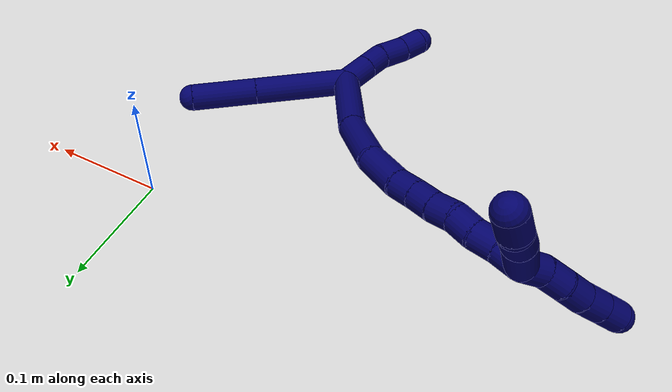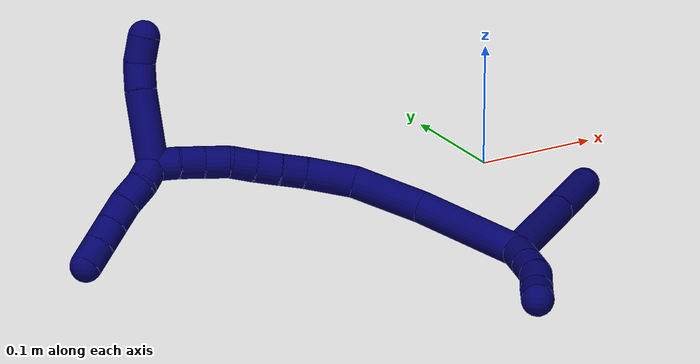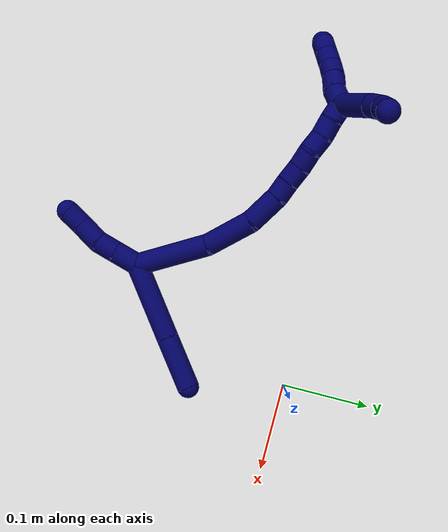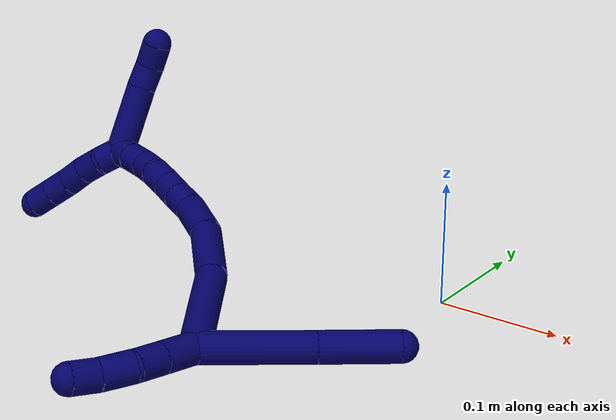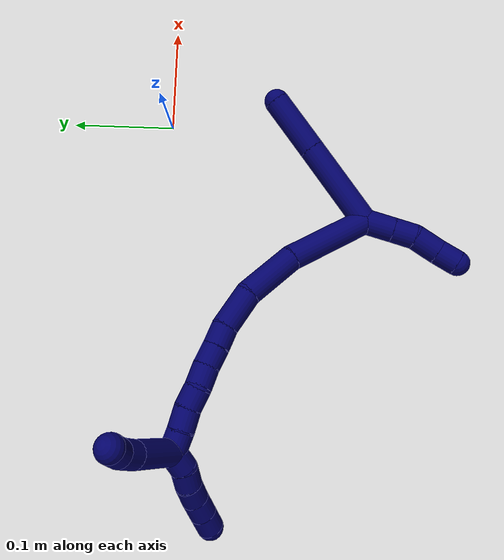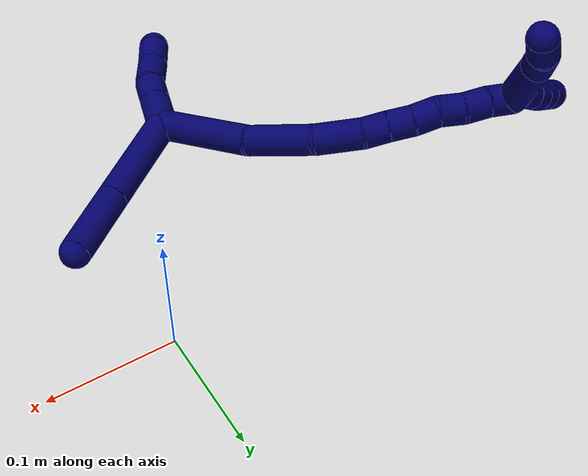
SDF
<sdf version="1.7">
 <world name="default">
  <model name="7">
   <static>0</static>
   <link name="7">
    <collision name="collision-cylinder-e_1_2_8">
     <pose>-0.015465 -0.036073 -0.021206 2.10224 -0.354008 -0.606037</pose>
     <geometry><cylinder><radius>0.0125</radius><length>0.089221</length></cylinder></geometry>
     <surface>
      <friction><ode><mu>1.16</mu><mu2>1.16</mu2><slip1>0</slip1><slip2>0</slip2></ode></friction>
      <contact><ode><kp>1e+06</kp><kd>1</kd><max_vel>0</max_vel><min_depth>0.001</min_depth></ode></contact>
     </surface>
    </collision>
    <visual name="visual-cylinder-e_1_2_8">
     <pose>-0.015465 -0.036073 -0.021206 2.10224 -0.354008 -0.606037</pose>
     <geometry><cylinder><radius>0.0125</radius><length>0.089221</length></cylinder></geometry>
     <material><ambient>0.003922 0 0.403922 1</ambient></material>
    </visual>
    <collision name="collision-cylinder-e_2_8_6">
     <pose>-0.041548 -0.096603 -0.056992 2.1084 -0.356963 -0.615009</pose>
     <geometry><cylinder><radius>0.0125</radius><length>0.060779</length></cylinder></geometry>
     <surface>
      <friction><ode><mu>1.16</mu><mu2>1.16</mu2><slip1>0</slip1><slip2>0</slip2></ode></friction>
      <contact><ode><kp>1e+06</kp><kd>1</kd><max_vel>0</max_vel><min_depth>0.001</min_depth></ode></contact>
     </surface>
    </collision>
    <visual name="visual-cylinder-e_2_8_6">
     <pose>-0.041548 -0.096603 -0.056992 2.1084 -0.356963 -0.615009</pose>
     <geometry><cylinder><radius>0.0125</radius><length>0.060779</length></cylinder></geometry>
     <material><ambient>0.003922 0 0.403922 1</ambient></material>
    </visual>
    <collision name="collision-cylinder-e_1_2_9">
     <pose>0.011909 0.005566 0.006137 -0.736589 0.962958 -0.397927</pose>
     <geometry><cylinder><radius>0.0125</radius><length>0.029015</length></cylinder></geometry>
     <surface>
      <friction><ode><mu>1.16</mu><mu2>1.16</mu2><slip1>0</slip1><slip2>0</slip2></ode></friction>
      <contact><ode><kp>1e+06</kp><kd>1</kd><max_vel>0</max_vel><min_depth>0.001</min_depth></ode></contact>
     </surface>
    </collision>
    <visual name="visual-cylinder-e_1_2_9">
     <pose>0.011909 0.005566 0.006137 -0.736589 0.962958 -0.397927</pose>
     <geometry><cylinder><radius>0.0125</radius><length>0.029015</length></cylinder></geometry>
     <material><ambient>0.003922 0 0.403922 1</ambient></material>
    </visual>
    <collision name="collision-cylinder-e_2_9_10">
     <pose>0.032967 0.015487 0.016978 -0.747013 0.959655 -0.402368</pose>
     <geometry><cylinder><radius>0.0125</radius><length>0.022343</length></cylinder></geometry>
     <surface>
      <friction><ode><mu>1.16</mu><mu2>1.16</mu2><slip1>0</slip1><slip2>0</slip2></ode></friction>
      <contact><ode><kp>1e+06</kp><kd>1</kd><max_vel>0</max_vel><min_depth>0.001</min_depth></ode></contact>
     </surface>
    </collision>
    <visual name="visual-cylinder-e_2_9_10">
     <pose>0.032967 0.015487 0.016978 -0.747013 0.959655 -0.402368</pose>
     <geometry><cylinder><radius>0.0125</radius><length>0.022343</length></cylinder></geometry>
     <material><ambient>0.003922 0 0.403922 1</ambient></material>
    </visual>
    <collision name="collision-cylinder-e_3_10_11">
     <pose>0.05051 0.027338 0.028817 -0.809983 0.681439 -0.301672</pose>
     <geometry><cylinder><radius>0.0125</radius><length>0.026651</length></cylinder></geometry>
     <surface>
      <friction><ode><mu>1.16</mu><mu2>1.16</mu2><slip1>0</slip1><slip2>0</slip2></ode></friction>
      <contact><ode><kp>1e+06</kp><kd>1</kd><max_vel>0</max_vel><min_depth>0.001</min_depth></ode></contact>
     </surface>
    </collision>
    <visual name="visual-cylinder-e_3_10_11">
     <pose>0.05051 0.027338 0.028817 -0.809983 0.681439 -0.301672</pose>
     <geometry><cylinder><radius>0.0125</radius><length>0.026651</length></cylinder></geometry>
     <material><ambient>0.003922 0 0.403922 1</ambient></material>
    </visual>
    <collision name="collision-cylinder-e_4_11_5">
     <pose>0.066426 0.041377 0.040591 -0.954249 0.753359 -0.403425</pose>
     <geometry><cylinder><radius>0.0125</radius><length>0.021991</length></cylinder></geometry>
     <surface>
      <friction><ode><mu>1.16</mu><mu2>1.16</mu2><slip1>0</slip1><slip2>0</slip2></ode></friction>
      <contact><ode><kp>1e+06</kp><kd>1</kd><max_vel>0</max_vel><min_depth>0.001</min_depth></ode></contact>
     </surface>
    </collision>
    <visual name="visual-cylinder-e_4_11_5">
     <pose>0.066426 0.041377 0.040591 -0.954249 0.753359 -0.403425</pose>
     <geometry><cylinder><radius>0.0125</radius><length>0.021991</length></cylinder></geometry>
     <material><ambient>0.003922 0 0.403922 1</ambient></material>
    </visual>
    <collision name="collision-cylinder-e_1_2_12">
     <pose>-0.035679 0.017955 -0.015268 -2.27547 -0.987019 1.72162</pose>
     <geometry><cylinder><radius>0.0125</radius><length>0.085522</length></cylinder></geometry>
     <surface>
      <friction><ode><mu>1.16</mu><mu2>1.16</mu2><slip1>0</slip1><slip2>0</slip2></ode></friction>
      <contact><ode><kp>1e+06</kp><kd>1</kd><max_vel>0</max_vel><min_depth>0.001</min_depth></ode></contact>
     </surface>
    </collision>
    <visual name="visual-cylinder-e_1_2_12">
     <pose>-0.035679 0.017955 -0.015268 -2.27547 -0.987019 1.72162</pose>
     <geometry><cylinder><radius>0.0125</radius><length>0.085522</length></cylinder></geometry>
     <material><ambient>0.003922 0 0.403922 1</ambient></material>
    </visual>
    <collision name="collision-cylinder-e_2_12_13">
     <pose>-0.092081 0.052818 -0.038561 -2.01399 -0.836254 1.22516</pose>
     <geometry><cylinder><radius>0.0125</radius><length>0.055845</length></cylinder></geometry>
     <surface>
      <friction><ode><mu>1.16</mu><mu2>1.16</mu2><slip1>0</slip1><slip2>0</slip2></ode></friction>
      <contact><ode><kp>1e+06</kp><kd>1</kd><max_vel>0</max_vel><min_depth>0.001</min_depth></ode></contact>
     </surface>
    </collision>
    <visual name="visual-cylinder-e_2_12_13">
     <pose>-0.092081 0.052818 -0.038561 -2.01399 -0.836254 1.22516</pose>
     <geometry><cylinder><radius>0.0125</radius><length>0.055845</length></cylinder></geometry>
     <material><ambient>0.003922 0 0.403922 1</ambient></material>
    </visual>
    <collision name="collision-cylinder-e_3_13_14">
     <pose>-0.125142 0.084389 -0.048331 -1.68918 -0.696002 0.775575</pose>
     <geometry><cylinder><radius>0.0125</radius><length>0.038488</length></cylinder></geometry>
     <surface>
      <friction><ode><mu>1.16</mu><mu2>1.16</mu2><slip1>0</slip1><slip2>0</slip2></ode></friction>
      <contact><ode><kp>1e+06</kp><kd>1</kd><max_vel>0</max_vel><min_depth>0.001</min_depth></ode></contact>
     </surface>
    </collision>
    <visual name="visual-cylinder-e_3_13_14">
     <pose>-0.125142 0.084389 -0.048331 -1.68918 -0.696002 0.775575</pose>
     <geometry><cylinder><radius>0.0125</radius><length>0.038488</length></cylinder></geometry>
     <material><ambient>0.003922 0 0.403922 1</ambient></material>
    </visual>
    <collision name="collision-cylinder-e_4_14_15">
     <pose>-0.142517 0.107743 -0.05018 -1.58288 -0.525332 0.531423</pose>
     <geometry><cylinder><radius>0.0125</radius><length>0.020087</length></cylinder></geometry>
     <surface>
      <friction><ode><mu>1.16</mu><mu2>1.16</mu2><slip1>0</slip1><slip2>0</slip2></ode></friction>
      <contact><ode><kp>1e+06</kp><kd>1</kd><max_vel>0</max_vel><min_depth>0.001</min_depth></ode></contact>
     </surface>
    </collision>
    <visual name="visual-cylinder-e_4_14_15">
     <pose>-0.142517 0.107743 -0.05018 -1.58288 -0.525332 0.531423</pose>
     <geometry><cylinder><radius>0.0125</radius><length>0.020087</length></cylinder></geometry>
     <material><ambient>0.003922 0 0.403922 1</ambient></material>
    </visual>
    <collision name="collision-cylinder-e_5_15_16">
     <pose>-0.153016 0.124829 -0.050559 -1.60335 -0.576459 0.594448</pose>
     <geometry><cylinder><radius>0.0125</radius><length>0.020042</length></cylinder></geometry>
     <surface>
      <friction><ode><mu>1.16</mu><mu2>1.16</mu2><slip1>0</slip1><slip2>0</slip2></ode></friction>
      <contact><ode><kp>1e+06</kp><kd>1</kd><max_vel>0</max_vel><min_depth>0.001</min_depth></ode></contact>
     </surface>
    </collision>
    <visual name="visual-cylinder-e_5_15_16">
     <pose>-0.153016 0.124829 -0.050559 -1.60335 -0.576459 0.594448</pose>
     <geometry><cylinder><radius>0.0125</radius><length>0.020042</length></cylinder></geometry>
     <material><ambient>0.003922 0 0.403922 1</ambient></material>
    </visual>
    <collision name="collision-cylinder-e_6_16_17">
     <pose>-0.162811 0.142227 -0.051286 -1.62118 -0.44813 0.470474</pose>
     <geometry><cylinder><radius>0.0125</radius><length>0.020001</length></cylinder></geometry>
     <surface>
      <friction><ode><mu>1.16</mu><mu2>1.16</mu2><slip1>0</slip1><slip2>0</slip2></ode></friction>
      <contact><ode><kp>1e+06</kp><kd>1</kd><max_vel>0</max_vel><min_depth>0.001</min_depth></ode></contact>
     </surface>
    </collision>
    <visual name="visual-cylinder-e_6_16_17">
     <pose>-0.162811 0.142227 -0.051286 -1.62118 -0.44813 0.470474</pose>
     <geometry><cylinder><radius>0.0125</radius><length>0.020001</length></cylinder></geometry>
     <material><ambient>0.003922 0 0.403922 1</ambient></material>
    </visual>
    <collision name="collision-cylinder-e_7_17_18">
     <pose>-0.17323 0.159088 -0.050623 -1.42959 -0.654005 0.572573</pose>
     <geometry><cylinder><radius>0.0125</radius><length>0.020005</length></cylinder></geometry>
     <surface>
      <friction><ode><mu>1.16</mu><mu2>1.16</mu2><slip1>0</slip1><slip2>0</slip2></ode></friction>
      <contact><ode><kp>1e+06</kp><kd>1</kd><max_vel>0</max_vel><min_depth>0.001</min_depth></ode></contact>
     </surface>
    </collision>
    <visual name="visual-cylinder-e_7_17_18">
     <pose>-0.17323 0.159088 -0.050623 -1.42959 -0.654005 0.572573</pose>
     <geometry><cylinder><radius>0.0125</radius><length>0.020005</length></cylinder></geometry>
     <material><ambient>0.003922 0 0.403922 1</ambient></material>
    </visual>
    <collision name="collision-cylinder-e_8_18_19">
     <pose>-0.183841 0.175761 -0.048127 -1.41563 -0.469592 0.40382</pose>
     <geometry><cylinder><radius>0.0125</radius><length>0.020006</length></cylinder></geometry>
     <surface>
      <friction><ode><mu>1.16</mu><mu2>1.16</mu2><slip1>0</slip1><slip2>0</slip2></ode></friction>
      <contact><ode><kp>1e+06</kp><kd>1</kd><max_vel>0</max_vel><min_depth>0.001</min_depth></ode></contact>
     </surface>
    </collision>
    <visual name="visual-cylinder-e_8_18_19">
     <pose>-0.183841 0.175761 -0.048127 -1.41563 -0.469592 0.40382</pose>
     <geometry><cylinder><radius>0.0125</radius><length>0.020006</length></cylinder></geometry>
     <material><ambient>0.003922 0 0.403922 1</ambient></material>
    </visual>
    <collision name="collision-cylinder-e_9_19_1">
     <pose>-0.193837 0.192728 -0.044843 -1.34128 -0.578553 0.463717</pose>
     <geometry><cylinder><radius>0.0125</radius><length>0.020003</length></cylinder></geometry>
     <surface>
      <friction><ode><mu>1.16</mu><mu2>1.16</mu2><slip1>0</slip1><slip2>0</slip2></ode></friction>
      <contact><ode><kp>1e+06</kp><kd>1</kd><max_vel>0</max_vel><min_depth>0.001</min_depth></ode></contact>
     </surface>
    </collision>
    <visual name="visual-cylinder-e_9_19_1">
     <pose>-0.193837 0.192728 -0.044843 -1.34128 -0.578553 0.463717</pose>
     <geometry><cylinder><radius>0.0125</radius><length>0.020003</length></cylinder></geometry>
     <material><ambient>0.003922 0 0.403922 1</ambient></material>
    </visual>
    <collision name="collision-cylinder-e_1_1_20">
     <pose>-0.202569 0.207459 -0.071026 -2.91158 -0.112648 0.908173</pose>
     <geometry><cylinder><radius>0.0125</radius><length>0.058062</length></cylinder></geometry>
     <surface>
      <friction><ode><mu>1.16</mu><mu2>1.16</mu2><slip1>0</slip1><slip2>0</slip2></ode></friction>
      <contact><ode><kp>1e+06</kp><kd>1</kd><max_vel>0</max_vel><min_depth>0.001</min_depth></ode></contact>
     </surface>
    </collision>
    <visual name="visual-cylinder-e_1_1_20">
     <pose>-0.202569 0.207459 -0.071026 -2.91158 -0.112648 0.908173</pose>
     <geometry><cylinder><radius>0.0125</radius><length>0.058062</length></cylinder></geometry>
     <material><ambient>0.003922 0 0.403922 1</ambient></material>
    </visual>
    <collision name="collision-cylinder-e_2_20_21">
     <pose>-0.206449 0.215493 -0.109366 -3.00047 -0.059402 0.795856</pose>
     <geometry><cylinder><radius>0.0125</radius><length>0.020748</length></cylinder></geometry>
     <surface>
      <friction><ode><mu>1.16</mu><mu2>1.16</mu2><slip1>0</slip1><slip2>0</slip2></ode></friction>
      <contact><ode><kp>1e+06</kp><kd>1</kd><max_vel>0</max_vel><min_depth>0.001</min_depth></ode></contact>
     </surface>
    </collision>
    <visual name="visual-cylinder-e_2_20_21">
     <pose>-0.206449 0.215493 -0.109366 -3.00047 -0.059402 0.795856</pose>
     <geometry><cylinder><radius>0.0125</radius><length>0.020748</length></cylinder></geometry>
     <material><ambient>0.003922 0 0.403922 1</ambient></material>
    </visual>
    <collision name="collision-cylinder-e_3_21_4">
     <pose>-0.20464 0.217811 -0.129896 -3.05794 0.2309 -2.44888</pose>
     <geometry><cylinder><radius>0.0125</radius><length>0.02119</length></cylinder></geometry>
     <surface>
      <friction><ode><mu>1.16</mu><mu2>1.16</mu2><slip1>0</slip1><slip2>0</slip2></ode></friction>
      <contact><ode><kp>1e+06</kp><kd>1</kd><max_vel>0</max_vel><min_depth>0.001</min_depth></ode></contact>
     </surface>
    </collision>
    <visual name="visual-cylinder-e_3_21_4">
     <pose>-0.20464 0.217811 -0.129896 -3.05794 0.2309 -2.44888</pose>
     <geometry><cylinder><radius>0.0125</radius><length>0.02119</length></cylinder></geometry>
     <material><ambient>0.003922 0 0.403922 1</ambient></material>
    </visual>
    <collision name="collision-cylinder-e_1_1_22">
     <pose>-0.198154 0.20641 -0.034684 -0.590065 0.115412 -0.035109</pose>
     <geometry><cylinder><radius>0.0125</radius><length>0.02</length></cylinder></geometry>
     <surface>
      <friction><ode><mu>1.16</mu><mu2>1.16</mu2><slip1>0</slip1><slip2>0</slip2></ode></friction>
      <contact><ode><kp>1e+06</kp><kd>1</kd><max_vel>0</max_vel><min_depth>0.001</min_depth></ode></contact>
     </surface>
    </collision>
    <visual name="visual-cylinder-e_1_1_22">
     <pose>-0.198154 0.20641 -0.034684 -0.590065 0.115412 -0.035109</pose>
     <geometry><cylinder><radius>0.0125</radius><length>0.02</length></cylinder></geometry>
     <material><ambient>0.003922 0 0.403922 1</ambient></material>
    </visual>
    <collision name="collision-cylinder-e_2_22_23">
     <pose>-0.199016 0.217507 -0.018374 -0.604951 -0.20271 0.063452</pose>
     <geometry><cylinder><radius>0.0125</radius><length>0.02</length></cylinder></geometry>
     <surface>
      <friction><ode><mu>1.16</mu><mu2>1.16</mu2><slip1>0</slip1><slip2>0</slip2></ode></friction>
      <contact><ode><kp>1e+06</kp><kd>1</kd><max_vel>0</max_vel><min_depth>0.001</min_depth></ode></contact>
     </surface>
    </collision>
    <visual name="visual-cylinder-e_2_22_23">
     <pose>-0.199016 0.217507 -0.018374 -0.604951 -0.20271 0.063452</pose>
     <geometry><cylinder><radius>0.0125</radius><length>0.02</length></cylinder></geometry>
     <material><ambient>0.003922 0 0.403922 1</ambient></material>
    </visual>
    <collision name="collision-cylinder-e_3_23_24">
     <pose>-0.202344 0.227638 -0.001515 -0.478007 -0.13181 0.032161</pose>
     <geometry><cylinder><radius>0.0125</radius><length>0.02</length></cylinder></geometry>
     <surface>
      <friction><ode><mu>1.16</mu><mu2>1.16</mu2><slip1>0</slip1><slip2>0</slip2></ode></friction>
      <contact><ode><kp>1e+06</kp><kd>1</kd><max_vel>0</max_vel><min_depth>0.001</min_depth></ode></contact>
     </surface>
    </collision>
    <visual name="visual-cylinder-e_3_23_24">
     <pose>-0.202344 0.227638 -0.001515 -0.478007 -0.13181 0.032161</pose>
     <geometry><cylinder><radius>0.0125</radius><length>0.02</length></cylinder></geometry>
     <material><ambient>0.003922 0 0.403922 1</ambient></material>
    </visual>
    <collision name="collision-cylinder-e_4_24_25">
     <pose>-0.204134 0.2372 0.015934 -0.524423 -0.04767 0.012796</pose>
     <geometry><cylinder><radius>0.0125</radius><length>0.02</length></cylinder></geometry>
     <surface>
      <friction><ode><mu>1.16</mu><mu2>1.16</mu2><slip1>0</slip1><slip2>0</slip2></ode></friction>
      <contact><ode><kp>1e+06</kp><kd>1</kd><max_vel>0</max_vel><min_depth>0.001</min_depth></ode></contact>
     </surface>
    </collision>
    <visual name="visual-cylinder-e_4_24_25">
     <pose>-0.204134 0.2372 0.015934 -0.524423 -0.04767 0.012796</pose>
     <geometry><cylinder><radius>0.0125</radius><length>0.02</length></cylinder></geometry>
     <material><ambient>0.003922 0 0.403922 1</ambient></material>
    </visual>
    <collision name="collision-cylinder-e_5_25_3">
     <pose>-0.205154 0.247179 0.033236 -0.5218 -0.054367 0.014518</pose>
     <geometry><cylinder><radius>0.0125</radius><length>0.02</length></cylinder></geometry>
     <surface>
      <friction><ode><mu>1.16</mu><mu2>1.16</mu2><slip1>0</slip1><slip2>0</slip2></ode></friction>
      <contact><ode><kp>1e+06</kp><kd>1</kd><max_vel>0</max_vel><min_depth>0.001</min_depth></ode></contact>
     </surface>
    </collision>
    <visual name="visual-cylinder-e_5_25_3">
     <pose>-0.205154 0.247179 0.033236 -0.5218 -0.054367 0.014518</pose>
     <geometry><cylinder><radius>0.0125</radius><length>0.02</length></cylinder></geometry>
     <material><ambient>0.003922 0 0.403922 1</ambient></material>
    </visual>
    <collision name="collision-sphere-3">
     <pose>-0.205698 0.252156 0.041893 0 -0 0</pose>
     <geometry><sphere><radius>0.0125</radius></sphere></geometry>
     <surface>
      <friction><ode><mu>1.16</mu><mu2>1.16</mu2><slip1>0</slip1><slip2>0</slip2></ode></friction>
      <contact><ode><kp>1e+06</kp><kd>1</kd><max_vel>0</max_vel><min_depth>0.001</min_depth></ode></contact>
     </surface>
    </collision>
    <visual name="visual-sphere-3">
     <pose>-0.205698 0.252156 0.041893 0 -0 0</pose>
     <geometry><sphere><radius>0.0125</radius></sphere></geometry>
     <material><ambient>0.003922 0 0.403922 1</ambient></material>
    </visual>
    <collision name="collision-sphere-25">
     <pose>-0.204611 0.242202 0.02458 0 -0 0</pose>
     <geometry><sphere><radius>0.0125</radius></sphere></geometry>
     <surface>
      <friction><ode><mu>1.16</mu><mu2>1.16</mu2><slip1>0</slip1><slip2>0</slip2></ode></friction>
      <contact><ode><kp>1e+06</kp><kd>1</kd><max_vel>0</max_vel><min_depth>0.001</min_depth></ode></contact>
     </surface>
    </collision>
    <visual name="visual-sphere-25">
     <pose>-0.204611 0.242202 0.02458 0 -0 0</pose>
     <geometry><sphere><radius>0.0125</radius></sphere></geometry>
     <material><ambient>0.003922 0 0.403922 1</ambient></material>
    </visual>
    <collision name="collision-sphere-24">
     <pose>-0.203658 0.232199 0.007287 0 -0 0</pose>
     <geometry><sphere><radius>0.0125</radius></sphere></geometry>
     <surface>
      <friction><ode><mu>1.16</mu><mu2>1.16</mu2><slip1>0</slip1><slip2>0</slip2></ode></friction>
      <contact><ode><kp>1e+06</kp><kd>1</kd><max_vel>0</max_vel><min_depth>0.001</min_depth></ode></contact>
     </surface>
    </collision>
    <visual name="visual-sphere-24">
     <pose>-0.203658 0.232199 0.007287 0 -0 0</pose>
     <geometry><sphere><radius>0.0125</radius></sphere></geometry>
     <material><ambient>0.003922 0 0.403922 1</ambient></material>
    </visual>
    <collision name="collision-sphere-23">
     <pose>-0.201029 0.223078 -0.010317 0 -0 0</pose>
     <geometry><sphere><radius>0.0125</radius></sphere></geometry>
     <surface>
      <friction><ode><mu>1.16</mu><mu2>1.16</mu2><slip1>0</slip1><slip2>0</slip2></ode></friction>
      <contact><ode><kp>1e+06</kp><kd>1</kd><max_vel>0</max_vel><min_depth>0.001</min_depth></ode></contact>
     </surface>
    </collision>
    <visual name="visual-sphere-23">
     <pose>-0.201029 0.223078 -0.010317 0 -0 0</pose>
     <geometry><sphere><radius>0.0125</radius></sphere></geometry>
     <material><ambient>0.003922 0 0.403922 1</ambient></material>
    </visual>
    <collision name="collision-sphere-22">
     <pose>-0.197003 0.211937 -0.026431 0 -0 0</pose>
     <geometry><sphere><radius>0.0125</radius></sphere></geometry>
     <surface>
      <friction><ode><mu>1.16</mu><mu2>1.16</mu2><slip1>0</slip1><slip2>0</slip2></ode></friction>
      <contact><ode><kp>1e+06</kp><kd>1</kd><max_vel>0</max_vel><min_depth>0.001</min_depth></ode></contact>
     </surface>
    </collision>
    <visual name="visual-sphere-22">
     <pose>-0.197003 0.211937 -0.026431 0 -0 0</pose>
     <geometry><sphere><radius>0.0125</radius></sphere></geometry>
     <material><ambient>0.003922 0 0.403922 1</ambient></material>
    </visual>
    <collision name="collision-sphere-4">
     <pose>-0.202215 0.218673 -0.140174 0 -0 0</pose>
     <geometry><sphere><radius>0.0125</radius></sphere></geometry>
     <surface>
      <friction><ode><mu>1.16</mu><mu2>1.16</mu2><slip1>0</slip1><slip2>0</slip2></ode></friction>
      <contact><ode><kp>1e+06</kp><kd>1</kd><max_vel>0</max_vel><min_depth>0.001</min_depth></ode></contact>
     </surface>
    </collision>
    <visual name="visual-sphere-4">
     <pose>-0.202215 0.218673 -0.140174 0 -0 0</pose>
     <geometry><sphere><radius>0.0125</radius></sphere></geometry>
     <material><ambient>0.003922 0 0.403922 1</ambient></material>
    </visual>
    <collision name="collision-sphere-21">
     <pose>-0.207064 0.216949 -0.119618 0 -0 0</pose>
     <geometry><sphere><radius>0.0125</radius></sphere></geometry>
     <surface>
      <friction><ode><mu>1.16</mu><mu2>1.16</mu2><slip1>0</slip1><slip2>0</slip2></ode></friction>
      <contact><ode><kp>1e+06</kp><kd>1</kd><max_vel>0</max_vel><min_depth>0.001</min_depth></ode></contact>
     </surface>
    </collision>
    <visual name="visual-sphere-21">
     <pose>-0.207064 0.216949 -0.119618 0 -0 0</pose>
     <geometry><sphere><radius>0.0125</radius></sphere></geometry>
     <material><ambient>0.003922 0 0.403922 1</ambient></material>
    </visual>
    <collision name="collision-sphere-20">
     <pose>-0.205833 0.214036 -0.099113 0 -0 0</pose>
     <geometry><sphere><radius>0.0125</radius></sphere></geometry>
     <surface>
      <friction><ode><mu>1.16</mu><mu2>1.16</mu2><slip1>0</slip1><slip2>0</slip2></ode></friction>
      <contact><ode><kp>1e+06</kp><kd>1</kd><max_vel>0</max_vel><min_depth>0.001</min_depth></ode></contact>
     </surface>
    </collision>
    <visual name="visual-sphere-20">
     <pose>-0.205833 0.214036 -0.099113 0 -0 0</pose>
     <geometry><sphere><radius>0.0125</radius></sphere></geometry>
     <material><ambient>0.003922 0 0.403922 1</ambient></material>
    </visual>
    <collision name="collision-sphere-11">
     <pose>0.058904 0.034834 0.035953 0 -0 0</pose>
     <geometry><sphere><radius>0.0125</radius></sphere></geometry>
     <surface>
      <friction><ode><mu>1.16</mu><mu2>1.16</mu2><slip1>0</slip1><slip2>0</slip2></ode></friction>
      <contact><ode><kp>1e+06</kp><kd>1</kd><max_vel>0</max_vel><min_depth>0.001</min_depth></ode></contact>
     </surface>
    </collision>
    <visual name="visual-sphere-11">
     <pose>0.058904 0.034834 0.035953 0 -0 0</pose>
     <geometry><sphere><radius>0.0125</radius></sphere></geometry>
     <material><ambient>0.003922 0 0.403922 1</ambient></material>
    </visual>
    <collision name="collision-sphere-10">
     <pose>0.042116 0.019842 0.021681 0 -0 0</pose>
     <geometry><sphere><radius>0.0125</radius></sphere></geometry>
     <surface>
      <friction><ode><mu>1.16</mu><mu2>1.16</mu2><slip1>0</slip1><slip2>0</slip2></ode></friction>
      <contact><ode><kp>1e+06</kp><kd>1</kd><max_vel>0</max_vel><min_depth>0.001</min_depth></ode></contact>
     </surface>
    </collision>
    <visual name="visual-sphere-10">
     <pose>0.042116 0.019842 0.021681 0 -0 0</pose>
     <geometry><sphere><radius>0.0125</radius></sphere></geometry>
     <material><ambient>0.003922 0 0.403922 1</ambient></material>
    </visual>
    <collision name="collision-sphere-6">
     <pose>-0.052167 -0.121061 -0.071573 0 -0 0</pose>
     <geometry><sphere><radius>0.0125</radius></sphere></geometry>
     <surface>
      <friction><ode><mu>1.16</mu><mu2>1.16</mu2><slip1>0</slip1><slip2>0</slip2></ode></friction>
      <contact><ode><kp>1e+06</kp><kd>1</kd><max_vel>0</max_vel><min_depth>0.001</min_depth></ode></contact>
     </surface>
    </collision>
    <visual name="visual-sphere-6">
     <pose>-0.052167 -0.121061 -0.071573 0 -0 0</pose>
     <geometry><sphere><radius>0.0125</radius></sphere></geometry>
     <material><ambient>0.003922 0 0.403922 1</ambient></material>
    </visual>
    <collision name="collision-sphere-9">
     <pose>0.023818 0.011131 0.012275 0 -0 0</pose>
     <geometry><sphere><radius>0.0125</radius></sphere></geometry>
     <surface>
      <friction><ode><mu>1.16</mu><mu2>1.16</mu2><slip1>0</slip1><slip2>0</slip2></ode></friction>
      <contact><ode><kp>1e+06</kp><kd>1</kd><max_vel>0</max_vel><min_depth>0.001</min_depth></ode></contact>
     </surface>
    </collision>
    <visual name="visual-sphere-9">
     <pose>0.023818 0.011131 0.012275 0 -0 0</pose>
     <geometry><sphere><radius>0.0125</radius></sphere></geometry>
     <material><ambient>0.003922 0 0.403922 1</ambient></material>
    </visual>
    <collision name="collision-sphere-2">
     <geometry><sphere><radius>0.0125</radius></sphere></geometry>
     <surface>
      <friction><ode><mu>1.16</mu><mu2>1.16</mu2><slip1>0</slip1><slip2>0</slip2></ode></friction>
      <contact><ode><kp>1e+06</kp><kd>1</kd><max_vel>0</max_vel><min_depth>0.001</min_depth></ode></contact>
     </surface>
    </collision>
    <visual name="visual-sphere-2">
     <geometry><sphere><radius>0.0125</radius></sphere></geometry>
     <material><ambient>0.003922 0 0.403922 1</ambient></material>
    </visual>
    <collision name="collision-sphere-19">
     <pose>-0.188368 0.184574 -0.046748 0 -0 0</pose>
     <geometry><sphere><radius>0.0125</radius></sphere></geometry>
     <surface>
      <friction><ode><mu>1.16</mu><mu2>1.16</mu2><slip1>0</slip1><slip2>0</slip2></ode></friction>
      <contact><ode><kp>1e+06</kp><kd>1</kd><max_vel>0</max_vel><min_depth>0.001</min_depth></ode></contact>
     </surface>
    </collision>
    <visual name="visual-sphere-19">
     <pose>-0.188368 0.184574 -0.046748 0 -0 0</pose>
     <geometry><sphere><radius>0.0125</radius></sphere></geometry>
     <material><ambient>0.003922 0 0.403922 1</ambient></material>
    </visual>
    <collision name="collision-sphere-8">
     <pose>-0.030929 -0.072146 -0.042411 0 -0 0</pose>
     <geometry><sphere><radius>0.0125</radius></sphere></geometry>
     <surface>
      <friction><ode><mu>1.16</mu><mu2>1.16</mu2><slip1>0</slip1><slip2>0</slip2></ode></friction>
      <contact><ode><kp>1e+06</kp><kd>1</kd><max_vel>0</max_vel><min_depth>0.001</min_depth></ode></contact>
     </surface>
    </collision>
    <visual name="visual-sphere-8">
     <pose>-0.030929 -0.072146 -0.042411 0 -0 0</pose>
     <geometry><sphere><radius>0.0125</radius></sphere></geometry>
     <material><ambient>0.003922 0 0.403922 1</ambient></material>
    </visual>
    <collision name="collision-sphere-5">
     <pose>0.073948 0.047921 0.045228 0 -0 0</pose>
     <geometry><sphere><radius>0.0125</radius></sphere></geometry>
     <surface>
      <friction><ode><mu>1.16</mu><mu2>1.16</mu2><slip1>0</slip1><slip2>0</slip2></ode></friction>
      <contact><ode><kp>1e+06</kp><kd>1</kd><max_vel>0</max_vel><min_depth>0.001</min_depth></ode></contact>
     </surface>
    </collision>
    <visual name="visual-sphere-5">
     <pose>0.073948 0.047921 0.045228 0 -0 0</pose>
     <geometry><sphere><radius>0.0125</radius></sphere></geometry>
     <material><ambient>0.003922 0 0.403922 1</ambient></material>
    </visual>
    <collision name="collision-sphere-12">
     <pose>-0.071359 0.035911 -0.030536 0 -0 0</pose>
     <geometry><sphere><radius>0.0125</radius></sphere></geometry>
     <surface>
      <friction><ode><mu>1.16</mu><mu2>1.16</mu2><slip1>0</slip1><slip2>0</slip2></ode></friction>
      <contact><ode><kp>1e+06</kp><kd>1</kd><max_vel>0</max_vel><min_depth>0.001</min_depth></ode></contact>
     </surface>
    </collision>
    <visual name="visual-sphere-12">
     <pose>-0.071359 0.035911 -0.030536 0 -0 0</pose>
     <geometry><sphere><radius>0.0125</radius></sphere></geometry>
     <material><ambient>0.003922 0 0.403922 1</ambient></material>
    </visual>
    <collision name="collision-sphere-13">
     <pose>-0.112804 0.069725 -0.046587 0 -0 0</pose>
     <geometry><sphere><radius>0.0125</radius></sphere></geometry>
     <surface>
      <friction><ode><mu>1.16</mu><mu2>1.16</mu2><slip1>0</slip1><slip2>0</slip2></ode></friction>
      <contact><ode><kp>1e+06</kp><kd>1</kd><max_vel>0</max_vel><min_depth>0.001</min_depth></ode></contact>
     </surface>
    </collision>
    <visual name="visual-sphere-13">
     <pose>-0.112804 0.069725 -0.046587 0 -0 0</pose>
     <geometry><sphere><radius>0.0125</radius></sphere></geometry>
     <material><ambient>0.003922 0 0.403922 1</ambient></material>
    </visual>
    <collision name="collision-sphere-14">
     <pose>-0.137481 0.099054 -0.050075 0 -0 0</pose>
     <geometry><sphere><radius>0.0125</radius></sphere></geometry>
     <surface>
      <friction><ode><mu>1.16</mu><mu2>1.16</mu2><slip1>0</slip1><slip2>0</slip2></ode></friction>
      <contact><ode><kp>1e+06</kp><kd>1</kd><max_vel>0</max_vel><min_depth>0.001</min_depth></ode></contact>
     </surface>
    </collision>
    <visual name="visual-sphere-14">
     <pose>-0.137481 0.099054 -0.050075 0 -0 0</pose>
     <geometry><sphere><radius>0.0125</radius></sphere></geometry>
     <material><ambient>0.003922 0 0.403922 1</ambient></material>
    </visual>
    <collision name="collision-sphere-15">
     <pose>-0.147554 0.116431 -0.050285 0 -0 0</pose>
     <geometry><sphere><radius>0.0125</radius></sphere></geometry>
     <surface>
      <friction><ode><mu>1.16</mu><mu2>1.16</mu2><slip1>0</slip1><slip2>0</slip2></ode></friction>
      <contact><ode><kp>1e+06</kp><kd>1</kd><max_vel>0</max_vel><min_depth>0.001</min_depth></ode></contact>
     </surface>
    </collision>
    <visual name="visual-sphere-15">
     <pose>-0.147554 0.116431 -0.050285 0 -0 0</pose>
     <geometry><sphere><radius>0.0125</radius></sphere></geometry>
     <material><ambient>0.003922 0 0.403922 1</ambient></material>
    </visual>
    <collision name="collision-sphere-16">
     <pose>-0.158478 0.133226 -0.050832 0 -0 0</pose>
     <geometry><sphere><radius>0.0125</radius></sphere></geometry>
     <surface>
      <friction><ode><mu>1.16</mu><mu2>1.16</mu2><slip1>0</slip1><slip2>0</slip2></ode></friction>
      <contact><ode><kp>1e+06</kp><kd>1</kd><max_vel>0</max_vel><min_depth>0.001</min_depth></ode></contact>
     </surface>
    </collision>
    <visual name="visual-sphere-16">
     <pose>-0.158478 0.133226 -0.050832 0 -0 0</pose>
     <geometry><sphere><radius>0.0125</radius></sphere></geometry>
     <material><ambient>0.003922 0 0.403922 1</ambient></material>
    </visual>
    <collision name="collision-sphere-17">
     <pose>-0.167144 0.151229 -0.05174 0 -0 0</pose>
     <geometry><sphere><radius>0.0125</radius></sphere></geometry>
     <surface>
      <friction><ode><mu>1.16</mu><mu2>1.16</mu2><slip1>0</slip1><slip2>0</slip2></ode></friction>
      <contact><ode><kp>1e+06</kp><kd>1</kd><max_vel>0</max_vel><min_depth>0.001</min_depth></ode></contact>
     </surface>
    </collision>
    <visual name="visual-sphere-17">
     <pose>-0.167144 0.151229 -0.05174 0 -0 0</pose>
     <geometry><sphere><radius>0.0125</radius></sphere></geometry>
     <material><ambient>0.003922 0 0.403922 1</ambient></material>
    </visual>
    <collision name="collision-sphere-18">
     <pose>-0.179315 0.166948 -0.049505 0 -0 0</pose>
     <geometry><sphere><radius>0.0125</radius></sphere></geometry>
     <surface>
      <friction><ode><mu>1.16</mu><mu2>1.16</mu2><slip1>0</slip1><slip2>0</slip2></ode></friction>
      <contact><ode><kp>1e+06</kp><kd>1</kd><max_vel>0</max_vel><min_depth>0.001</min_depth></ode></contact>
     </surface>
    </collision>
    <visual name="visual-sphere-18">
     <pose>-0.179315 0.166948 -0.049505 0 -0 0</pose>
     <geometry><sphere><radius>0.0125</radius></sphere></geometry>
     <material><ambient>0.003922 0 0.403922 1</ambient></material>
    </visual>
    <collision name="collision-sphere-1">
     <pose>-0.199306 0.200882 -0.042938 0 -0 0</pose>
     <geometry><sphere><radius>0.0125</radius></sphere></geometry>
     <surface>
      <friction><ode><mu>1.16</mu><mu2>1.16</mu2><slip1>0</slip1><slip2>0</slip2></ode></friction>
      <contact><ode><kp>1e+06</kp><kd>1</kd><max_vel>0</max_vel><min_depth>0.001</min_depth></ode></contact>
     </surface>
    </collision>
    <visual name="visual-sphere-1">
     <pose>-0.199306 0.200882 -0.042938 0 -0 0</pose>
     <geometry><sphere><radius>0.0125</radius></sphere></geometry>
     <material><ambient>0.003922 0 0.403922 1</ambient></material>
    </visual>
    <inertial>
     <pose>-0.098387 0.083606 -0.031507 0 -0 0</pose>
     <mass>0.75</mass>
     <inertia><ixx>9.9e-05</ixx><ixy>0</ixy><ixz>0</ixz><iyy>6.7e-05</iyy><iyz>0</iyz><izz>9.5e-05</izz></inertia>
    </inertial>
   </link>
   <pose>-0.091363 -0.195343 0.012604 2.72484 -0.305929 -1.29422</pose>
  </model>
 </world>
</sdf>
